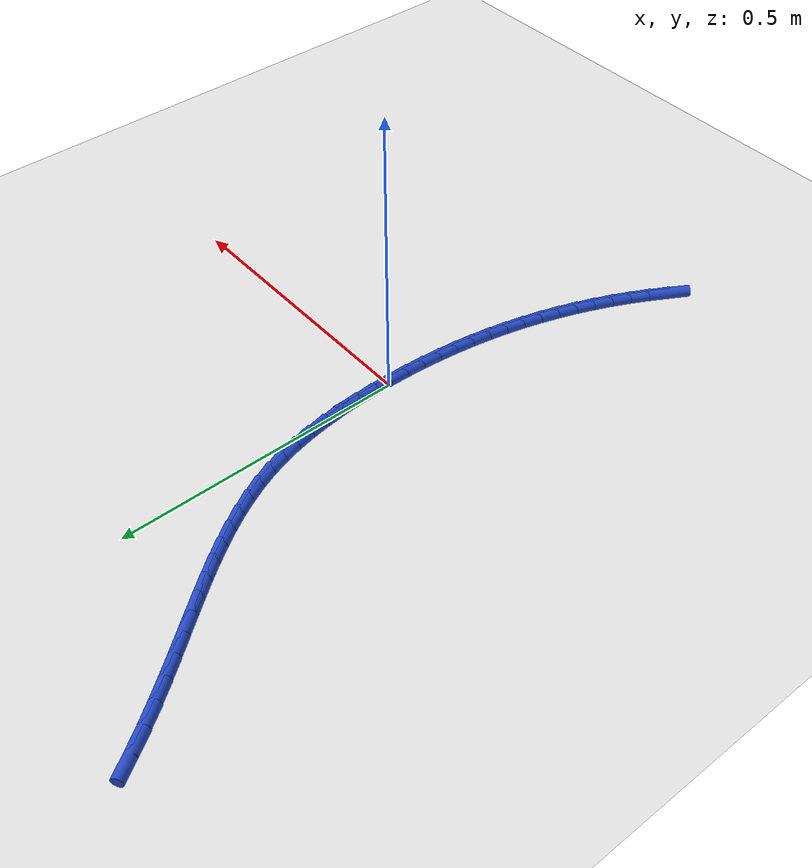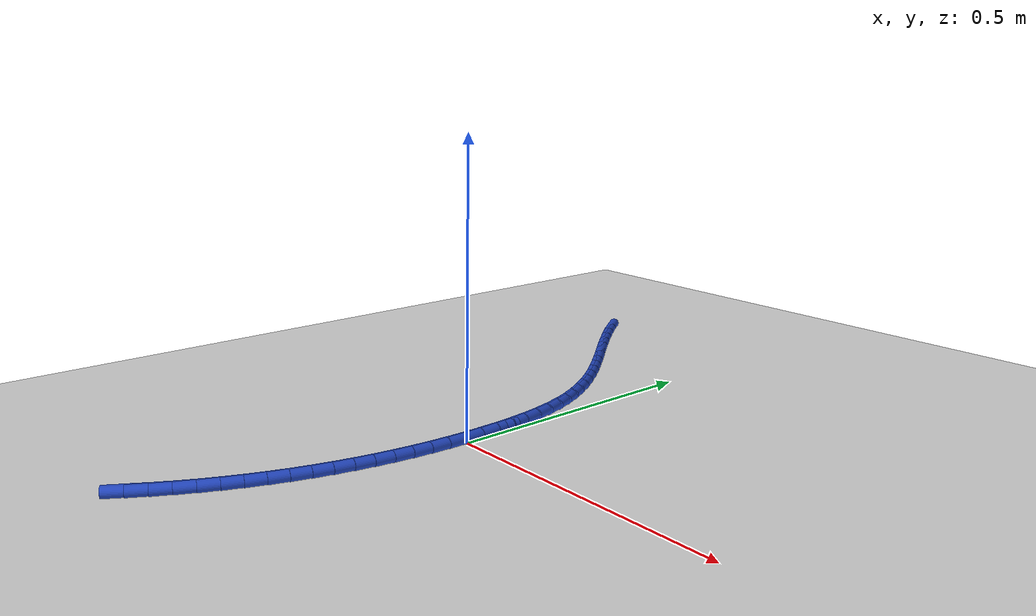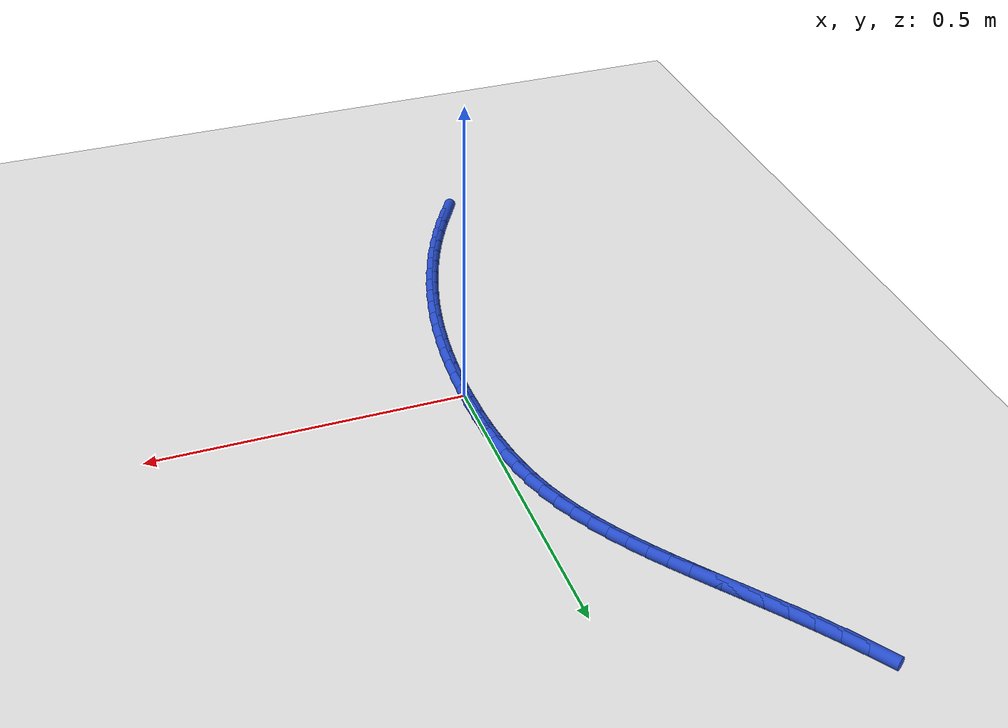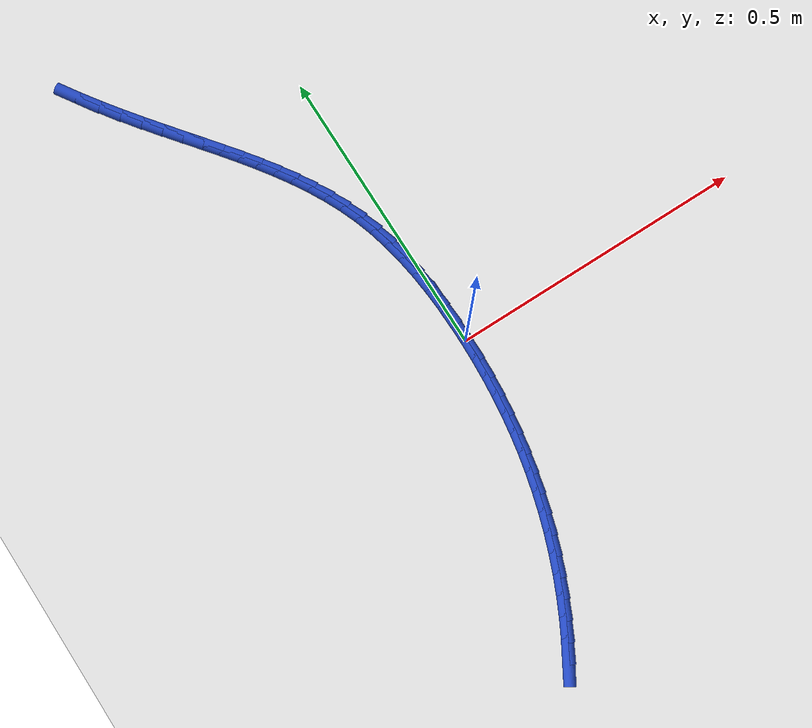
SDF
<sdf version="1.6">
 <world name="default">
  <model name="ground_plane">
   <static>1</static>
   <link name="link">
    <collision name="collision">
     <geometry><plane><normal>0 0 1</normal><size>100 100</size></plane></geometry>
     <surface><friction><ode><mu>100</mu><mu2>50</mu2></ode></friction></surface>
    </collision>
    <visual name="visual">
     <cast_shadows>0</cast_shadows>
     <geometry><plane><normal>0 0 1</normal><size>100 100</size></plane></geometry>
     <material>
      <script><uri>file://media/materials/scripts/gazebo.material</uri><name>Gazebo/WhiteGlow</name></script>
     </material>
    </visual>
   </link>
  </model>
  <model name="line">
   <link name="link_0">
    <pose>8.239936510889834e-18 -1.1102230246251565e-16 0.01 0 1.57 -1.568769187980779</pose>
    <collision name="collision">
     <geometry><cylinder><radius>0.01</radius><length>0.08</length></cylinder></geometry>
    </collision>
    <visual name="visual">
     <material>
      <script><name>Gazebo/Blue</name><uri>file://media/materials/scripts/gazebo.material</uri></script>
     </material>
     <geometry><cylinder><radius>0.01</radius><length>0.08</length></cylinder></geometry>
    </visual>
   </link>
   <link name="link_1">
    <pose>-6.884838589907749e-05 0.033963284168576885 0.01 0 1.57 -1.5379115577310962</pose>
    <collision name="collision">
     <geometry><cylinder><radius>0.01</radius><length>0.08</length></cylinder></geometry>
    </collision>
    <visual name="visual">
     <material>
      <script><name>Gazebo/Blue</name><uri>file://media/materials/scripts/gazebo.material</uri></script>
     </material>
     <geometry><cylinder><radius>0.01</radius><length>0.08</length></cylinder></geometry>
    </visual>
   </link>
   <link name="link_2">
    <pose>-0.001187895294535504 0.06798035435918875 0.01 0 1.57 -1.5032869814354892</pose>
    <collision name="collision">
     <geometry><cylinder><radius>0.01</radius><length>0.08</length></cylinder></geometry>
    </collision>
    <visual name="visual">
     <material>
      <script><name>Gazebo/Blue</name><uri>file://media/materials/scripts/gazebo.material</uri></script>
     </material>
     <geometry><cylinder><radius>0.01</radius><length>0.08</length></cylinder></geometry>
    </visual>
   </link>
   <link name="link_3">
    <pose>-0.00347770108287808 0.10184716366132715 0.01 0 1.57 -1.4643409256103015</pose>
    <collision name="collision">
     <geometry><cylinder><radius>0.01</radius><length>0.08</length></cylinder></geometry>
    </collision>
    <visual name="visual">
     <material>
      <script><name>Gazebo/Blue</name><uri>file://media/materials/scripts/gazebo.material</uri></script>
     </material>
     <geometry><cylinder><radius>0.01</radius><length>0.08</length></cylinder></geometry>
    </visual>
   </link>
   <link name="link_4">
    <pose>-0.00705882610789561 0.1353596651644838 0.01 0 1.57 -1.4204263204695051</pose>
    <collision name="collision">
     <geometry><cylinder><radius>0.01</radius><length>0.08</length></cylinder></geometry>
    </collision>
    <visual name="visual">
     <material>
      <script><name>Gazebo/Blue</name><uri>file://media/materials/scripts/gazebo.material</uri></script>
     </material>
     <geometry><cylinder><radius>0.01</radius><length>0.08</length></cylinder></geometry>
    </visual>
   </link>
   <link name="link_5">
    <pose>-0.012051830726556908 0.16831381195815034 0.01 0 1.57 -1.3708006603784892</pose>
    <collision name="collision">
     <geometry><cylinder><radius>0.01</radius><length>0.08</length></cylinder></geometry>
    </collision>
    <visual name="visual">
     <material>
      <script><name>Gazebo/Blue</name><uri>file://media/materials/scripts/gazebo.material</uri></script>
     </material>
     <geometry><cylinder><radius>0.01</radius><length>0.08</length></cylinder></geometry>
    </visual>
   </link>
   <link name="link_6">
    <pose>-0.018577275295830774 0.20050555713181833 0.01 0 1.57 -1.3146332263357112</pose>
    <collision name="collision">
     <geometry><cylinder><radius>0.01</radius><length>0.08</length></cylinder></geometry>
    </collision>
    <visual name="visual">
     <material>
      <script><name>Gazebo/Blue</name><uri>file://media/materials/scripts/gazebo.material</uri></script>
     </material>
     <geometry><cylinder><radius>0.01</radius><length>0.08</length></cylinder></geometry>
    </visual>
   </link>
   <link name="link_7">
    <pose>-0.026755720172686025 0.23173085377497965 0.01 0 1.57 -1.2518290704146458</pose>
    <collision name="collision">
     <geometry><cylinder><radius>0.01</radius><length>0.08</length></cylinder></geometry>
    </collision>
    <visual name="visual">
     <material>
      <script><name>Gazebo/Blue</name><uri>file://media/materials/scripts/gazebo.material</uri></script>
     </material>
     <geometry><cylinder><radius>0.01</radius><length>0.08</length></cylinder></geometry>
    </visual>
   </link>
   <link name="link_8">
    <pose>-0.03668979084973928 0.26181188946625367 0.01 0 1.57 -1.189024689200159</pose>
    <collision name="collision">
     <geometry><cylinder><radius>0.01</radius><length>0.08</length></cylinder></geometry>
    </collision>
    <visual name="visual">
     <material>
      <script><name>Gazebo/Blue</name><uri>file://media/materials/scripts/gazebo.material</uri></script>
     </material>
     <geometry><cylinder><radius>0.01</radius><length>0.08</length></cylinder></geometry>
    </visual>
   </link>
   <link name="link_9">
    <pose>-0.04832680934169417 0.29079802425252177 0.01 0 1.57 -1.1308273459899276</pose>
    <collision name="collision">
     <geometry><cylinder><radius>0.01</radius><length>0.08</length></cylinder></geometry>
    </collision>
    <visual name="visual">
     <material>
      <script><name>Gazebo/Blue</name><uri>file://media/materials/scripts/gazebo.material</uri></script>
     </material>
     <geometry><cylinder><radius>0.01</radius><length>0.08</length></cylinder></geometry>
    </visual>
   </link>
   <link name="link_10">
    <pose>-0.06153446916584447 0.3188550959475751 0.01 0 1.57 -1.0783287872617717</pose>
    <collision name="collision">
     <geometry><cylinder><radius>0.01</radius><length>0.08</length></cylinder></geometry>
    </collision>
    <visual name="visual">
     <material>
      <script><name>Gazebo/Blue</name><uri>file://media/materials/scripts/gazebo.material</uri></script>
     </material>
     <geometry><cylinder><radius>0.01</radius><length>0.08</length></cylinder></geometry>
    </visual>
   </link>
   <link name="link_11">
    <pose>-0.07617981572210636 0.3461498904085217 0.01 0 1.57 -1.0322931298612419</pose>
    <collision name="collision">
     <geometry><cylinder><radius>0.01</radius><length>0.08</length></cylinder></geometry>
    </collision>
    <visual name="visual">
     <material>
      <script><name>Gazebo/Blue</name><uri>file://media/materials/scripts/gazebo.material</uri></script>
     </material>
     <geometry><cylinder><radius>0.01</radius><length>0.08</length></cylinder></geometry>
    </visual>
   </link>
   <link name="link_12">
    <pose>-0.09212989441039607 0.37284919349246987 0.01 0 1.57 -0.9931920147272714</pose>
    <collision name="collision">
     <geometry><cylinder><radius>0.01</radius><length>0.08</length></cylinder></geometry>
    </collision>
    <visual name="visual">
     <material>
      <script><name>Gazebo/Blue</name><uri>file://media/materials/scripts/gazebo.material</uri></script>
     </material>
     <geometry><cylinder><radius>0.01</radius><length>0.08</length></cylinder></geometry>
    </visual>
   </link>
   <link name="link_13">
    <pose>-0.10925175063062981 0.3991197910565278 0.01 0 1.57 -0.9612427282606143</pose>
    <collision name="collision">
     <geometry><cylinder><radius>0.01</radius><length>0.08</length></cylinder></geometry>
    </collision>
    <visual name="visual">
     <material>
      <script><name>Gazebo/Blue</name><uri>file://media/materials/scripts/gazebo.material</uri></script>
     </material>
     <geometry><cylinder><radius>0.01</radius><length>0.08</length></cylinder></geometry>
    </visual>
   </link>
   <link name="link_14">
    <pose>-0.12741242978272382 0.4251284689578037 0.01 0 1.57 -0.9364613109729303</pose>
    <collision name="collision">
     <geometry><cylinder><radius>0.01</radius><length>0.08</length></cylinder></geometry>
    </collision>
    <visual name="visual">
     <material>
      <script><name>Gazebo/Blue</name><uri>file://media/materials/scripts/gazebo.material</uri></script>
     </material>
     <geometry><cylinder><radius>0.01</radius><length>0.08</length></cylinder></geometry>
    </visual>
   </link>
   <link name="link_15">
    <pose>-0.14647897726659428 0.4510420130534058 0.01 0 1.57 -0.918716794172173</pose>
    <collision name="collision">
     <geometry><cylinder><radius>0.01</radius><length>0.08</length></cylinder></geometry>
    </collision>
    <visual name="visual">
     <material>
      <script><name>Gazebo/Blue</name><uri>file://media/materials/scripts/gazebo.material</uri></script>
     </material>
     <geometry><cylinder><radius>0.01</radius><length>0.08</length></cylinder></geometry>
    </visual>
   </link>
   <link name="link_16">
    <pose>-0.16631843848215752 0.4770272092004423 0.01 0 1.57 -0.9077779189172979</pose>
    <collision name="collision">
     <geometry><cylinder><radius>0.01</radius><length>0.08</length></cylinder></geometry>
    </collision>
    <visual name="visual">
     <material>
      <script><name>Gazebo/Blue</name><uri>file://media/materials/scripts/gazebo.material</uri></script>
     </material>
     <geometry><cylinder><radius>0.01</radius><length>0.08</length></cylinder></geometry>
    </visual>
   </link>
   <link name="link_17">
    <pose>-0.1867978588293296 0.5032508432560214 0.01 0 1.57 -0.9033485758834942</pose>
    <collision name="collision">
     <geometry><cylinder><radius>0.01</radius><length>0.08</length></cylinder></geometry>
    </collision>
    <visual name="visual">
     <material>
      <script><name>Gazebo/Blue</name><uri>file://media/materials/scripts/gazebo.material</uri></script>
     </material>
     <geometry><cylinder><radius>0.01</radius><length>0.08</length></cylinder></geometry>
    </visual>
   </link>
   <link name="link_18">
    <pose>-0.2077842837080268 0.5298797010772512 0.01 0 1.57 -0.9050916242084458</pose>
    <collision name="collision">
     <geometry><cylinder><radius>0.01</radius><length>0.08</length></cylinder></geometry>
    </collision>
    <visual name="visual">
     <material>
      <script><name>Gazebo/Blue</name><uri>file://media/materials/scripts/gazebo.material</uri></script>
     </material>
     <geometry><cylinder><radius>0.01</radius><length>0.08</length></cylinder></geometry>
    </visual>
   </link>
   <link name="link_19">
    <pose>-0.2291447585181654 0.5570805685212401 0.01 0 1.57 -0.9126426502276339</pose>
    <collision name="collision">
     <geometry><cylinder><radius>0.01</radius><length>0.08</length></cylinder></geometry>
    </collision>
    <visual name="visual">
     <material>
      <script><name>Gazebo/Blue</name><uri>file://media/materials/scripts/gazebo.material</uri></script>
     </material>
     <geometry><cylinder><radius>0.01</radius><length>0.08</length></cylinder></geometry>
    </visual>
   </link>
   <link name="link_20">
    <pose>-0.2507463286596615 0.5850202314450962 0.01 0 1.57 -0.925616029925873</pose>
    <collision name="collision">
     <geometry><cylinder><radius>0.01</radius><length>0.08</length></cylinder></geometry>
    </collision>
    <visual name="visual">
     <material>
      <script><name>Gazebo/Blue</name><uri>file://media/materials/scripts/gazebo.material</uri></script>
     </material>
     <geometry><cylinder><radius>0.01</radius><length>0.08</length></cylinder></geometry>
    </visual>
   </link>
   <link name="link_21">
    <pose>-0.2724560395324314 0.6138654757059276 0.01 0 1.57 -0.9436058251299823</pose>
    <collision name="collision">
     <geometry><cylinder><radius>0.01</radius><length>0.08</length></cylinder></geometry>
    </collision>
    <visual name="visual">
     <material>
      <script><name>Gazebo/Blue</name><uri>file://media/materials/scripts/gazebo.material</uri></script>
     </material>
     <geometry><cylinder><radius>0.01</radius><length>0.08</length></cylinder></geometry>
    </visual>
   </link>
   <link name="link_22">
    <pose>-0.29414093653639134 0.6437830871608429 0.01 0 1.57 -0.9661839045540002</pose>
    <collision name="collision">
     <geometry><cylinder><radius>0.01</radius><length>0.08</length></cylinder></geometry>
    </collision>
    <visual name="visual">
     <material>
      <script><name>Gazebo/Blue</name><uri>file://media/materials/scripts/gazebo.material</uri></script>
     </material>
     <geometry><cylinder><radius>0.01</radius><length>0.08</length></cylinder></geometry>
    </visual>
   </link>
   <link name="link_23">
    <pose>-0.3156680650714575 0.6749398516669498 0.01 0 1.57 -0.9924007623152327</pose>
    <collision name="collision">
     <geometry><cylinder><radius>0.01</radius><length>0.08</length></cylinder></geometry>
    </collision>
    <visual name="visual">
     <material>
      <script><name>Gazebo/Blue</name><uri>file://media/materials/scripts/gazebo.material</uri></script>
     </material>
     <geometry><cylinder><radius>0.01</radius><length>0.08</length></cylinder></geometry>
    </visual>
   </link>
   <link name="link_244">
    <pose>-0.13931510667559055 -0.5083789299795168 0.01 0 1.57 1.045581345315699</pose>
    <collision name="collision">
     <geometry><cylinder><radius>0.01</radius><length>0.08</length></cylinder></geometry>
    </collision>
    <visual name="visual">
     <material>
      <script><name>Gazebo/Blue</name><uri>file://media/materials/scripts/gazebo.material</uri></script>
     </material>
     <geometry><cylinder><radius>0.01</radius><length>0.08</length></cylinder></geometry>
    </visual>
   </link>
   <link name="link_245">
    <pose>-0.12257068561170988 -0.47948468959142676 0.01 0 1.57 1.0816799033907303</pose>
    <collision name="collision">
     <geometry><cylinder><radius>0.01</radius><length>0.08</length></cylinder></geometry>
    </collision>
    <visual name="visual">
     <material>
      <script><name>Gazebo/Blue</name><uri>file://media/materials/scripts/gazebo.material</uri></script>
     </material>
     <geometry><cylinder><radius>0.01</radius><length>0.08</length></cylinder></geometry>
    </visual>
   </link>
   <link name="link_246">
    <pose>-0.10687739000371457 -0.45000007559550786 0.01 0 1.57 1.117344888230857</pose>
    <collision name="collision">
     <geometry><cylinder><radius>0.01</radius><length>0.08</length></cylinder></geometry>
    </collision>
    <visual name="visual">
     <material>
      <script><name>Gazebo/Blue</name><uri>file://media/materials/scripts/gazebo.material</uri></script>
     </material>
     <geometry><cylinder><radius>0.01</radius><length>0.08</length></cylinder></geometry>
    </visual>
   </link>
   <link name="link_247">
    <pose>-0.09224359037647711 -0.419970875549734 0.01 0 1.57 1.1525443294623405</pose>
    <collision name="collision">
     <geometry><cylinder><radius>0.01</radius><length>0.08</length></cylinder></geometry>
    </collision>
    <visual name="visual">
     <material>
      <script><name>Gazebo/Blue</name><uri>file://media/materials/scripts/gazebo.material</uri></script>
     </material>
     <geometry><cylinder><radius>0.01</radius><length>0.08</length></cylinder></geometry>
    </visual>
   </link>
   <link name="link_248">
    <pose>-0.07867747202482055 -0.3894493846399572 0.01 0 1.57 1.1873481321981363</pose>
    <collision name="collision">
     <geometry><cylinder><radius>0.01</radius><length>0.08</length></cylinder></geometry>
    </collision>
    <visual name="visual">
     <material>
      <script><name>Gazebo/Blue</name><uri>file://media/materials/scripts/gazebo.material</uri></script>
     </material>
     <geometry><cylinder><radius>0.01</radius><length>0.08</length></cylinder></geometry>
    </visual>
   </link>
   <link name="link_249">
    <pose>-0.06618721207358746 -0.35848818508532987 0.01 0 1.57 1.2218328183696439</pose>
    <collision name="collision">
     <geometry><cylinder><radius>0.01</radius><length>0.08</length></cylinder></geometry>
    </collision>
    <visual name="visual">
     <material>
      <script><name>Gazebo/Blue</name><uri>file://media/materials/scripts/gazebo.material</uri></script>
     </material>
     <geometry><cylinder><radius>0.01</radius><length>0.08</length></cylinder></geometry>
    </visual>
   </link>
   <link name="link_250">
    <pose>-0.054780987647620454 -0.32713985910500426 0.01 0 1.57 1.2560769437426906</pose>
    <collision name="collision">
     <geometry><cylinder><radius>0.01</radius><length>0.08</length></cylinder></geometry>
    </collision>
    <visual name="visual">
     <material>
      <script><name>Gazebo/Blue</name><uri>file://media/materials/scripts/gazebo.material</uri></script>
     </material>
     <geometry><cylinder><radius>0.01</radius><length>0.08</length></cylinder></geometry>
    </visual>
   </link>
   <link name="link_251">
    <pose>-0.044466975871762085 -0.29545698891813293 0.01 0 1.57 1.2901608591700755</pose>
    <collision name="collision">
     <geometry><cylinder><radius>0.01</radius><length>0.08</length></cylinder></geometry>
    </collision>
    <visual name="visual">
     <material>
      <script><name>Gazebo/Blue</name><uri>file://media/materials/scripts/gazebo.material</uri></script>
     </material>
     <geometry><cylinder><radius>0.01</radius><length>0.08</length></cylinder></geometry>
    </visual>
   </link>
   <link name="link_252">
    <pose>-0.035253353870854695 -0.26349215674386717 0.01 0 1.57 1.3241651925758524</pose>
    <collision name="collision">
     <geometry><cylinder><radius>0.01</radius><length>0.08</length></cylinder></geometry>
    </collision>
    <visual name="visual">
     <material>
      <script><name>Gazebo/Blue</name><uri>file://media/materials/scripts/gazebo.material</uri></script>
     </material>
     <geometry><cylinder><radius>0.01</radius><length>0.08</length></cylinder></geometry>
    </visual>
   </link>
   <link name="link_253">
    <pose>-0.027148212589297466 -0.23129778640048468 0.01 0 1.57 1.3579845080098847</pose>
    <collision name="collision">
     <geometry><cylinder><radius>0.01</radius><length>0.08</length></cylinder></geometry>
    </collision>
    <visual name="visual">
     <material>
      <script><name>Gazebo/Blue</name><uri>file://media/materials/scripts/gazebo.material</uri></script>
     </material>
     <geometry><cylinder><radius>0.01</radius><length>0.08</length></cylinder></geometry>
    </visual>
   </link>
   <link name="link_254">
    <pose>-0.0201490547362512 -0.19890684037993137 0.01 0 1.57 1.3912276489207167</pose>
    <collision name="collision">
     <geometry><cylinder><radius>0.01</radius><length>0.08</length></cylinder></geometry>
    </collision>
    <visual name="visual">
     <material>
      <script><name>Gazebo/Blue</name><uri>file://media/materials/scripts/gazebo.material</uri></script>
     </material>
     <geometry><cylinder><radius>0.01</radius><length>0.08</length></cylinder></geometry>
    </visual>
   </link>
   <link name="link_255">
    <pose>-0.014232732251229764 -0.16631432476706318 0.01 0 1.57 1.4237404103433347</pose>
    <collision name="collision">
     <geometry><cylinder><radius>0.01</radius><length>0.08</length></cylinder></geometry>
    </collision>
    <visual name="visual">
     <material>
      <script><name>Gazebo/Blue</name><uri>file://media/materials/scripts/gazebo.material</uri></script>
     </material>
     <geometry><cylinder><radius>0.01</radius><length>0.08</length></cylinder></geometry>
    </visual>
   </link>
   <link name="link_256">
    <pose>-0.009373712267190444 -0.13351086233850867 0.01 0 1.57 1.4554173083646715</pose>
    <collision name="collision">
     <geometry><cylinder><radius>0.01</radius><length>0.08</length></cylinder></geometry>
    </collision>
    <visual name="visual">
     <material>
      <script><name>Gazebo/Blue</name><uri>file://media/materials/scripts/gazebo.material</uri></script>
     </material>
     <geometry><cylinder><radius>0.01</radius><length>0.08</length></cylinder></geometry>
    </visual>
   </link>
   <link name="link_257">
    <pose>-0.005546461917090518 -0.10048707587089642 0.01 0 1.57 1.486165345851127</pose>
    <collision name="collision">
     <geometry><cylinder><radius>0.01</radius><length>0.08</length></cylinder></geometry>
    </collision>
    <visual name="visual">
     <material>
      <script><name>Gazebo/Blue</name><uri>file://media/materials/scripts/gazebo.material</uri></script>
     </material>
     <geometry><cylinder><radius>0.01</radius><length>0.08</length></cylinder></geometry>
    </visual>
   </link>
   <link name="link_258">
    <pose>-0.0027254483338872808 -0.06723358814085514 0.01 0 1.57 1.5159047140987822</pose>
    <collision name="collision">
     <geometry><cylinder><radius>0.01</radius><length>0.08</length></cylinder></geometry>
    </collision>
    <visual name="visual">
     <material>
      <script><name>Gazebo/Blue</name><uri>file://media/materials/scripts/gazebo.material</uri></script>
     </material>
     <geometry><cylinder><radius>0.01</radius><length>0.08</length></cylinder></geometry>
    </visual>
   </link>
   <link name="link_259">
    <pose>-0.0008851386505380069 -0.033741021925013416 0.01 0 1.57 1.544569033220861</pose>
    <collision name="collision">
     <geometry><cylinder><radius>0.01</radius><length>0.08</length></cylinder></geometry>
    </collision>
    <visual name="visual">
     <material>
      <script><name>Gazebo/Blue</name><uri>file://media/materials/scripts/gazebo.material</uri></script>
     </material>
     <geometry><cylinder><radius>0.01</radius><length>0.08</length></cylinder></geometry>
    </visual>
   </link>
   <link name="link_260">
    <pose>1.8648277366750676e-17 1.6653345369377348e-16 0.01 0 1.57 -1.5694874741877631</pose>
    <collision name="collision">
     <geometry><cylinder><radius>0.01</radius><length>0.08</length></cylinder></geometry>
    </collision>
    <visual name="visual">
     <material>
      <script><name>Gazebo/Blue</name><uri>file://media/materials/scripts/gazebo.material</uri></script>
     </material>
     <geometry><cylinder><radius>0.01</radius><length>0.08</length></cylinder></geometry>
    </visual>
   </link>
   <link name="link_261">
    <pose>-4.449951523048234e-05 0.03399885485755699 0.01 0 1.57 -1.543119889612143</pose>
    <collision name="collision">
     <geometry><cylinder><radius>0.01</radius><length>0.08</length></cylinder></geometry>
    </collision>
    <visual name="visual">
     <material>
      <script><name>Gazebo/Blue</name><uri>file://media/materials/scripts/gazebo.material</uri></script>
     </material>
     <geometry><cylinder><radius>0.01</radius><length>0.08</length></cylinder></geometry>
    </visual>
   </link>
   <link name="link_262">
    <pose>-0.0009931043291867957 0.06826491987102846 0.01 0 1.57 -1.5562495540121901</pose>
    <collision name="collision">
     <geometry><cylinder><radius>0.01</radius><length>0.08</length></cylinder></geometry>
    </collision>
    <visual name="visual">
     <material>
      <script><name>Gazebo/Blue</name><uri>file://media/materials/scripts/gazebo.material</uri></script>
     </material>
     <geometry><cylinder><radius>0.01</radius><length>0.08</length></cylinder></geometry>
    </visual>
   </link>
  </model>
 </world>
</sdf>
